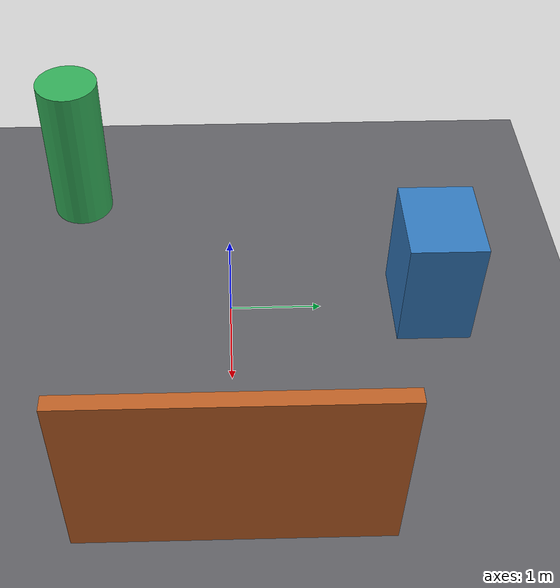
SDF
<?xml version="1.0"?>
<sdf version="1.9">
  <world name="ag_robot">

    <physics name="1ms" type="ignored">
      <max_step_size>0.001</max_step_size>
      <real_time_factor>1.0</real_time_factor>
    </physics>

    <plugin filename="gz-sim-physics-system" name="gz::sim::systems::Physics"/>
    <plugin filename="gz-sim-user-commands-system" name="gz::sim::systems::UserCommands"/>
    <plugin filename="gz-sim-scene-broadcaster-system" name="gz::sim::systems::SceneBroadcaster"/>
    <plugin filename="gz-sim-contact-system" name="gz::sim::systems::Contact"/>
    <plugin filename="gz-sim-sensors-system" name="gz::sim::systems::Sensors">
      <render_engine>ogre2</render_engine>
    </plugin>

    <scene>
      <!-- 环境光压低: 原来默认的 0.4 会把所有暗面一起提亮, 吃掉明暗对比 -->
      <ambient>0.22 0.23 0.26 1</ambient>
      <background>0.30 0.34 0.40 1</background>
      <shadows>true</shadows>
      <grid>false</grid>
    </scene>

    <!-- 太阳: 斜射。roll≈0.65rad(37°) + yaw≈0.78rad(45°), 从右前上方照过来,
         竖直面按朝向分成明显不同的明暗三档(迎光面/侧面/背光面) -->
    <light type="directional" name="sun">
      <cast_shadows>true</cast_shadows>
      <pose>0 0 10 0.65 0.0 0.78</pose>
      <diffuse>0.95 0.93 0.88 1</diffuse>
      <specular>0.35 0.35 0.35 1</specular>
      <direction>-0.4 0.5 -1</direction>
      <attenuation>
        <range>1000</range>
        <linear>0</linear>
        <constant>1</constant>
        <quadratic>0</quadratic>
      </attenuation>
    </light>

    <!-- 补一盏很弱的反向补光, 避免背光面死黑一片 -->
    <light type="directional" name="fill">
      <cast_shadows>false</cast_shadows>
      <pose>0 0 10 -0.2 0.0 -2.4</pose>
      <diffuse>0.18 0.20 0.24 1</diffuse>
      <specular>0.05 0.05 0.05 1</specular>
      <direction>-0.3 -0.6 -1</direction>
    </light>

    <model name="ground_plane">
      <static>true</static>
      <link name="link">
        <collision name="collision">
          <geometry><plane><normal>0 0 1</normal><size>100 100</size></plane></geometry>
        </collision>
        <visual name="visual">
          <geometry><plane><normal>0 0 1</normal><size>100 100</size></plane></geometry>
          <material>
            <ambient>0.30 0.30 0.31 1</ambient>
            <diffuse>0.38 0.38 0.40 1</diffuse>
            <specular>0.02 0.02 0.02 1</specular>
          </material>
        </visual>
      </link>
    </model>

    <!-- VLP-16 扫描演示障碍物：给 RViz 点云和 Gazebo 射线提供清晰的立体目标。 -->
    <model name="lidar_demo_obstacles">
      <static>true</static>
      <link name="obstacles">
        <collision name="front_wall_collision">
          <pose>2.8 0 1.0 0 0 0</pose>
          <geometry><box><size>0.15 3.0 2.0</size></box></geometry>
        </collision>
        <visual name="front_wall_visual">
          <pose>2.8 0 1.0 0 0 0</pose>
          <geometry><box><size>0.15 3.0 2.0</size></box></geometry>
          <material><ambient>0.55 0.28 0.12 1</ambient><diffuse>0.75 0.38 0.15 1</diffuse></material>
        </visual>
        <collision name="left_box_collision">
          <pose>0 2.2 0.65 0 0 0</pose>
          <geometry><box><size>1.0 0.8 1.3</size></box></geometry>
        </collision>
        <visual name="left_box_visual">
          <pose>0 2.2 0.65 0 0 0</pose>
          <geometry><box><size>1.0 0.8 1.3</size></box></geometry>
          <material><ambient>0.15 0.35 0.55 1</ambient><diffuse>0.20 0.48 0.75 1</diffuse></material>
        </visual>
        <collision name="right_cylinder_collision">
          <pose>-1.8 -1.8 0.9 0 0 0</pose>
          <geometry><cylinder><radius>0.35</radius><length>1.8</length></cylinder></geometry>
        </collision>
        <visual name="right_cylinder_visual">
          <pose>-1.8 -1.8 0.9 0 0 0</pose>
          <geometry><cylinder><radius>0.35</radius><length>1.8</length></cylinder></geometry>
          <material><ambient>0.15 0.48 0.25 1</ambient><diffuse>0.20 0.68 0.35 1</diffuse></material>
        </visual>
      </link>
    </model>

  </world>
</sdf>
